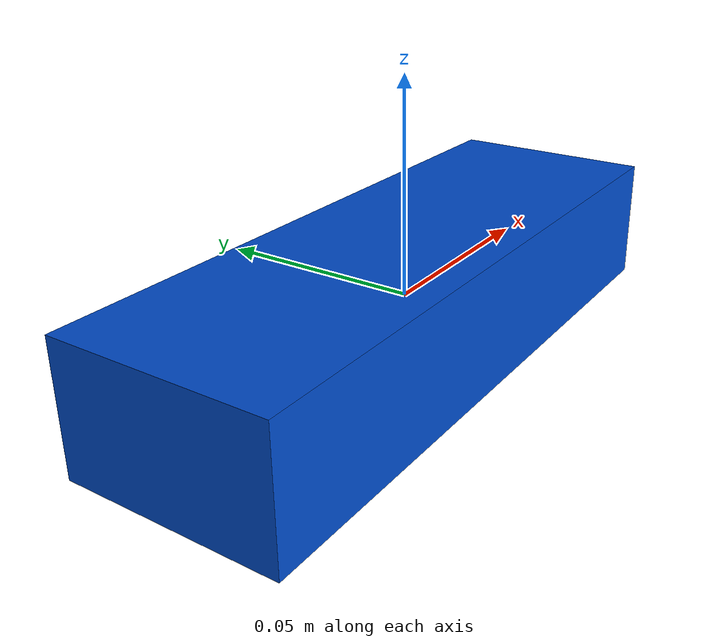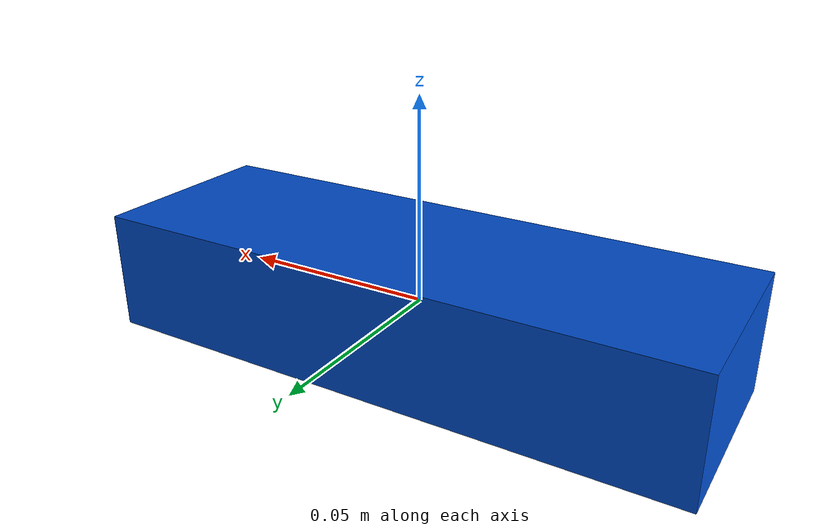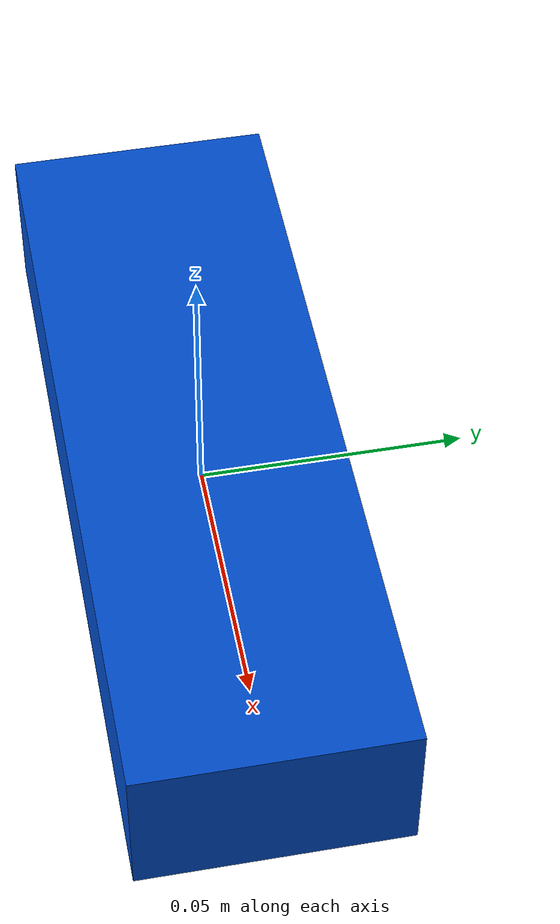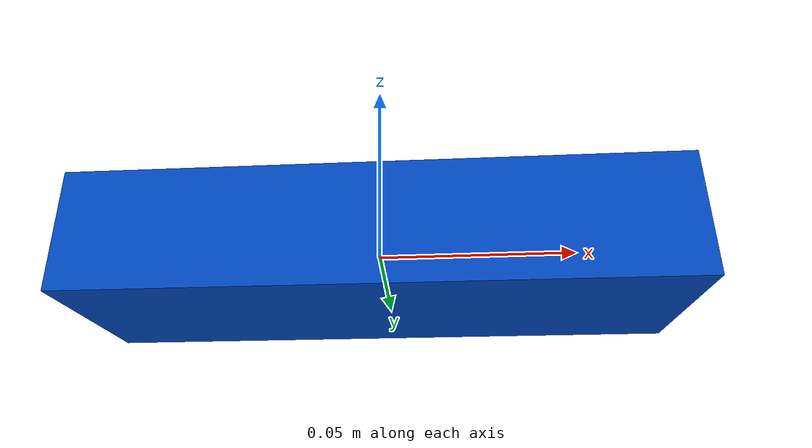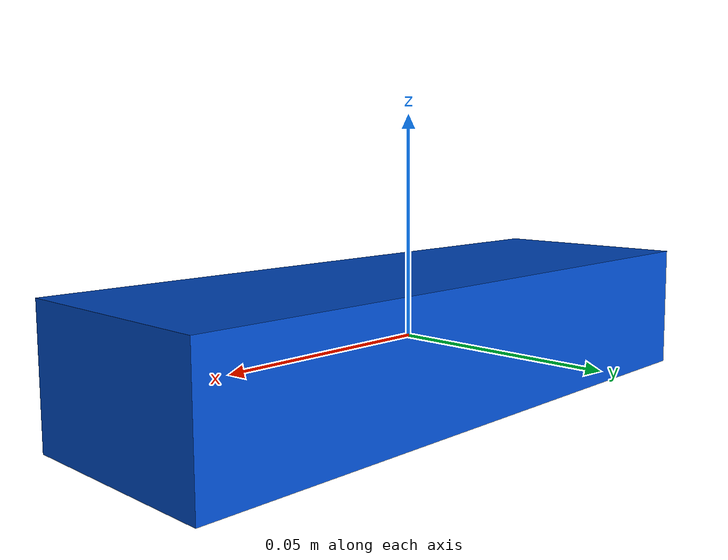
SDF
<?xml version="1.0" ?>
<sdf version="1.9">
  <model name="crate">
    <static>false</static>
    <link name="link">
      <inertial>
        <mass>0.17</mass>
        <inertia>
          <ixx>0.166</ixx>
          <iyy>0.166</iyy>
          <izz>0.166</izz>
          <ixy>0</ixy>
          <ixz>0</ixz>
          <iyz>0</iyz>
        </inertia>
      </inertial>

      <collision name="collision">
        <geometry>
          <box>
            <size>0.15 0.05 0.03</size>
          </box>
        </geometry>
        <surface>
          <friction>
            <ode>
              <mu>1.0</mu>
              <mu2>1.0</mu2>
            </ode>
          </friction>
          <bounce/>
          <contact/>
        </surface>
      </collision>

      <visual name="visual_crate">
        <geometry>
          <box>
            <size>0.15 0.05 0.03</size>
          </box>
        </geometry>
        <material>
          <ambient>0.0 0.3 0.8 1</ambient>
          <diffuse>0.0 0.3 0.8 1</diffuse>
          <specular>0.2 0.2 0.2 1</specular>
        </material>
      </visual>
    </link>
  </model>
</sdf>
